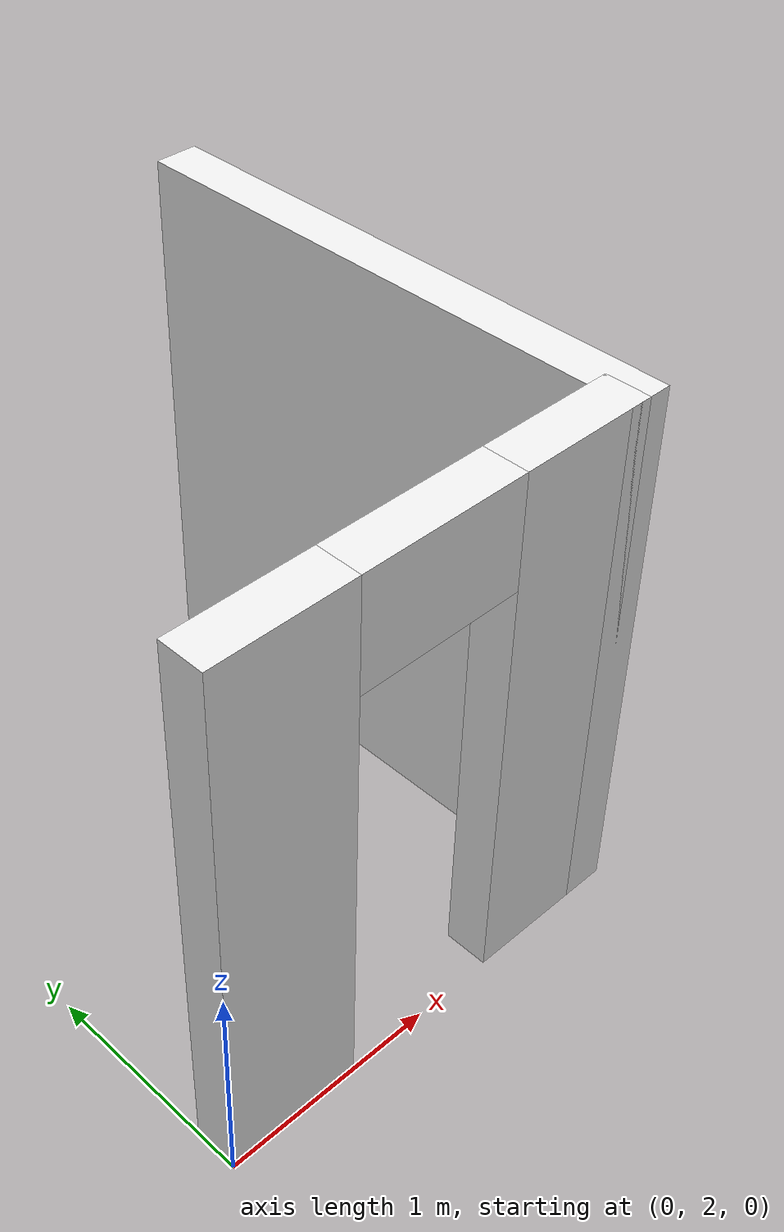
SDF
<?xml version='1.0'?>
<sdf version='1.4'>
  <model name='bathroom'>
    <link name='Wall_South'>
      <pose>1.0 2.1 0 0 0 0</pose>
      <visual name='Wall_South_Visual_0'>
        <pose>-0.6875 0 1.25 0 -0 0</pose>
        <geometry>
          <box>
            <size>0.625 0.2 2.5</size>
          </box>
        </geometry>
        <material>
          <script>
            <uri>file://media/materials/scripts/gazebo.material</uri>
            <name>Gazebo/White</name>
          </script>
        </material>
      </visual>
      <collision name='Wall_South_Collision_0'>
        <geometry>
          <box>
            <size>0.625 0.2 2.5</size>
          </box>
        </geometry>
        <pose>-0.6875 0 1.25 0 -0 0</pose>
      </collision>
      <visual name='Wall_South_Visual_1'>
        <pose>0.6875 0 1.25 0 -0 0</pose>
        <geometry>
          <box>
            <size>0.625 0.2 2.5</size>
          </box>
        </geometry>
        <material>
          <script>
            <uri>file://media/materials/scripts/gazebo.material</uri>
            <name>Gazebo/White</name>
          </script>
        </material>
      </visual>
      <collision name='Wall_South_Collision_1'>
        <geometry>
          <box>
            <size>0.625 0.2 2.5</size>
          </box>
        </geometry>
        <pose>0.6875 0 1.25 0 -0 0</pose>
      </collision>
      <visual name='Wall_South_Visual_2'>
        <pose>0 0 2.25 0 -0 0</pose>
        <geometry>
          <box>
            <size>0.75 0.2 0.5</size>
          </box>
        </geometry>
        <material>
          <script>
            <uri>file://media/materials/scripts/gazebo.material</uri>
            <name>Gazebo/White</name>
          </script>
        </material>
      </visual>
      <collision name='Wall_South_Collision_2'>
        <geometry>
          <box>
            <size>0.75 0.2 0.5</size>
          </box>
        </geometry>
        <pose>0 0 2.25 0 -0 0</pose>
      </collision>
    </link>
    <link name='Wall_East'>
      <collision name='Wall_East_Collision'>
        <geometry>
          <box>
            <size>2.5 0.2 2.5</size>
          </box>
        </geometry>
        <pose>0 0 1.25 0 -0 0</pose>
      </collision>
      <visual name='Wall_East_Visual'>
        <pose>0 0 1.25 0 -0 0</pose>
        <geometry>
          <box>
            <size>2.5 0.2 2.5</size>
          </box>
        </geometry>
        <material>
          <script>
            <uri>file://media/materials/scripts/gazebo.material</uri>
            <name>Gazebo/White</name>
          </script>
        </material>
      </visual>
      <velocity_decay>
        <linear>0</linear>
        <angular>0</angular>
      </velocity_decay>
      <pose>2.0 3.25 0 0 0 1.5708</pose>
    </link>
    <static>1</static>
  </model>
</sdf>
